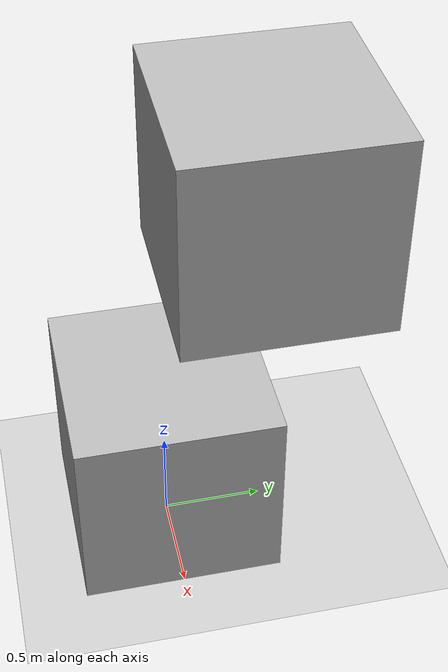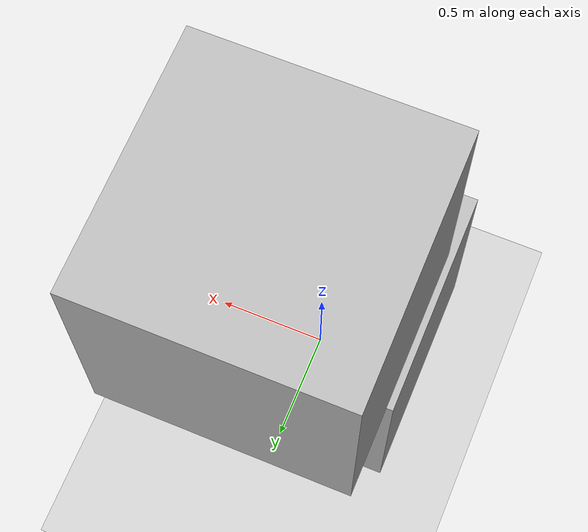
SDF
<?xml version="1.0" ?>
<sdf version="1.5">
  <world name="default">
    <include>
      <uri>model://ground_plane</uri>
    </include>
    <include>
      <uri>model://sun</uri>
    </include>
    <model name="t">
    <model name="revolute_model1">
      <pose>0 0 0.5 0 0 0</pose>
      <link name="body1">
        <inertial>
          <inertia>
            <ixx>1</ixx>
            <ixy>0</ixy>
            <ixz>0</ixz>
            <iyy>1</iyy>
            <iyz>0</iyz>
            <izz>1</izz>
          </inertia>
          <mass>1.0</mass>
        </inertial>
        <collision name="geom">
          <geometry>
            <box>
              <size>1 1 1</size>
            </box>
          </geometry>
        </collision>
        <visual name="visual">
          <geometry>
            <box>
              <size>1 1 1</size>
            </box>
          </geometry>
          <material>
            <script>Gazebo/WoodPallet</script>
          </material>
        </visual>
      </link>
    </model>
    <model name="revolute_model2">
      <pose>0 0 0 0 0 0</pose>
      <link name="body2">
        <pose>0 0.5 2.0 0 0 0</pose>
        <inertial>
          <inertia>
            <ixx>1</ixx>
            <ixy>0</ixy>
            <ixz>0</ixz>
            <iyy>1</iyy>
            <iyz>0</iyz>
            <izz>1</izz>
          </inertia>
          <mass>1.0</mass>
        </inertial>
        <collision name="geom">
          <geometry>
            <box>
              <size>1 1 1</size>
            </box>
          </geometry>
        </collision>
        <visual name="visual">
          <geometry>
            <box>
              <size>1 1 1</size>
            </box>
          </geometry>
          <material>
            <script>Gazebo/WoodPallet</script>
          </material>
        </visual>
      </link>

    </model>
    <joint type="revolute" name="revolute_joint">
      <pose>0 0 0 0 0 0</pose>
      <parent>revolute_model1::body1</parent>
      <child>revolute_model2::body2</child>
      <axis>
        <xyz>0 0 10</xyz>
        <use_parent_model_frame>true</use_parent_model_frame>
      </axis>
    </joint>
  </model>
  </world>
</sdf>
